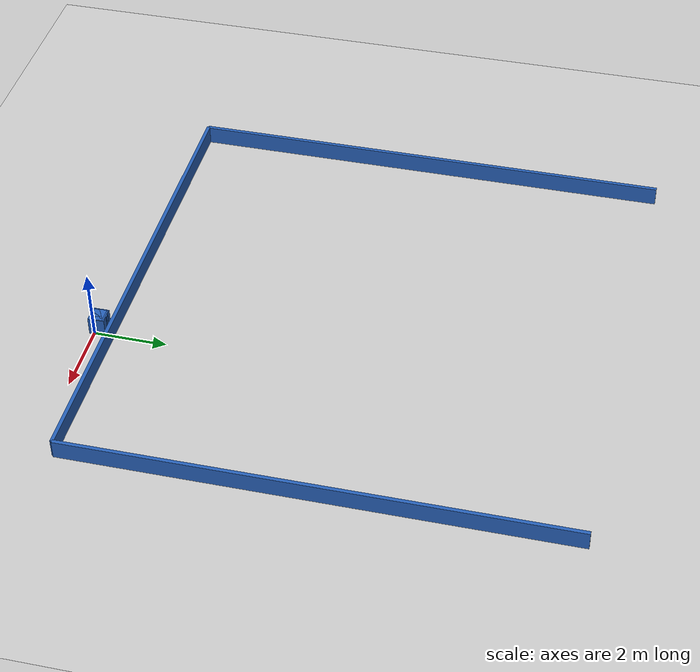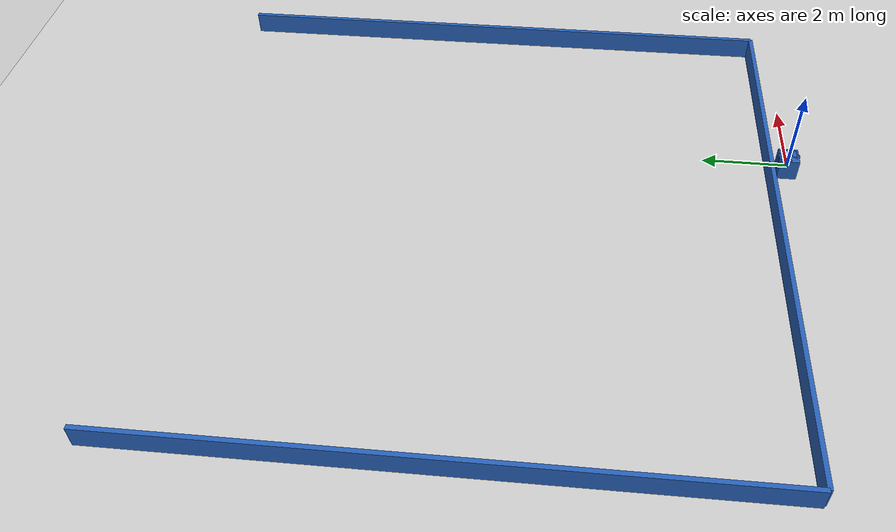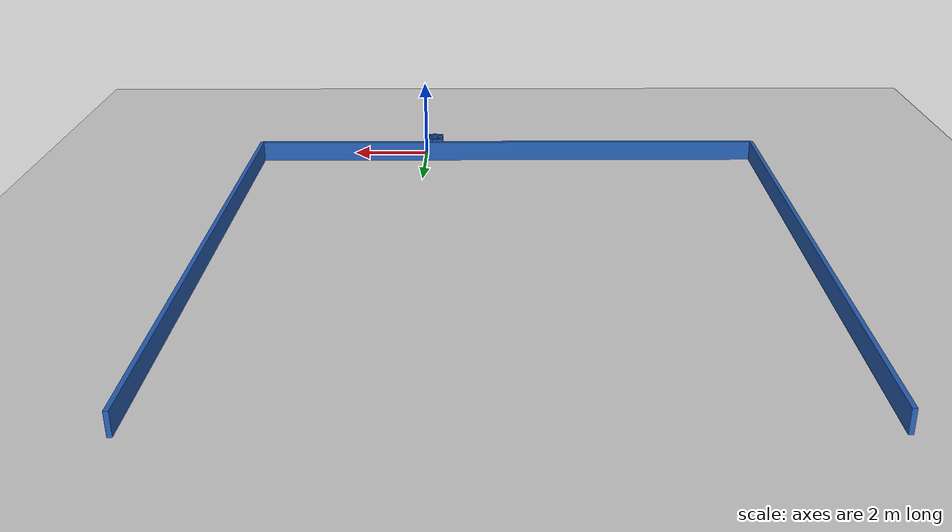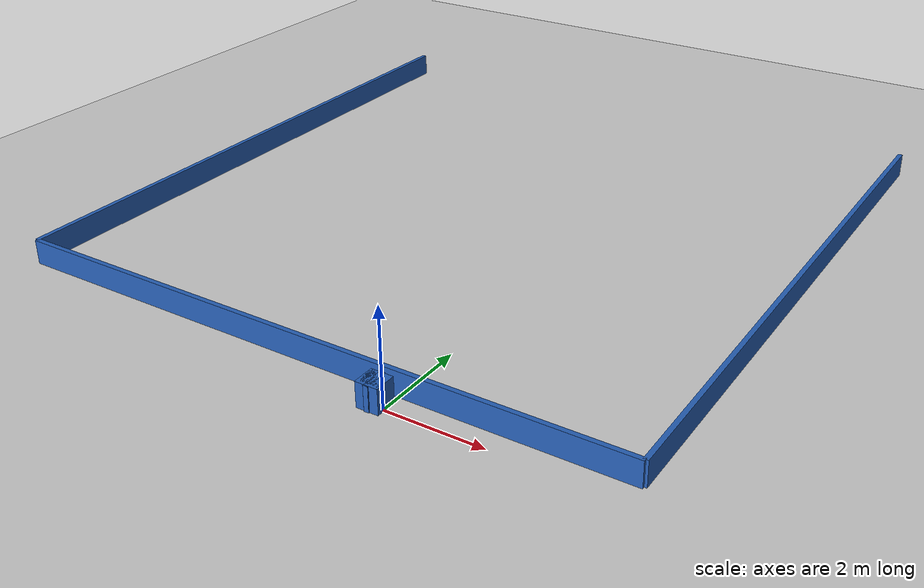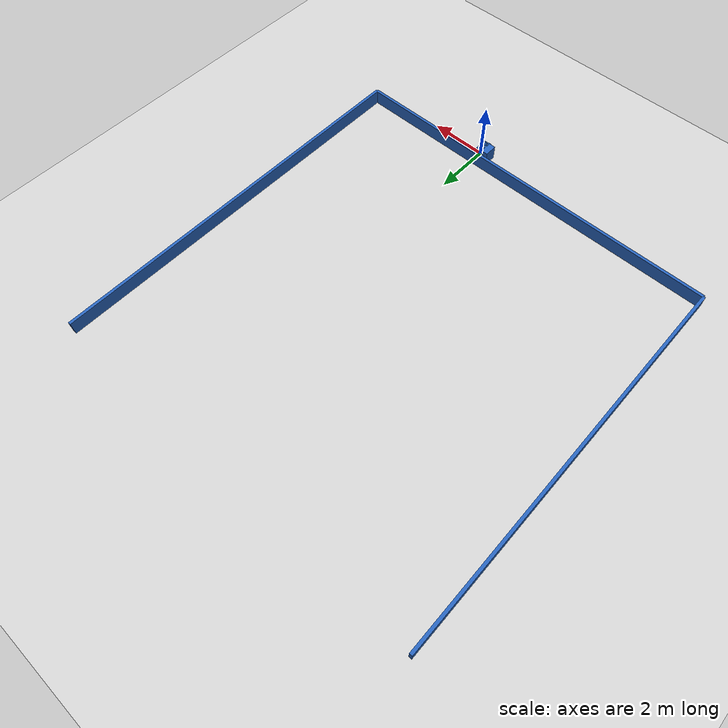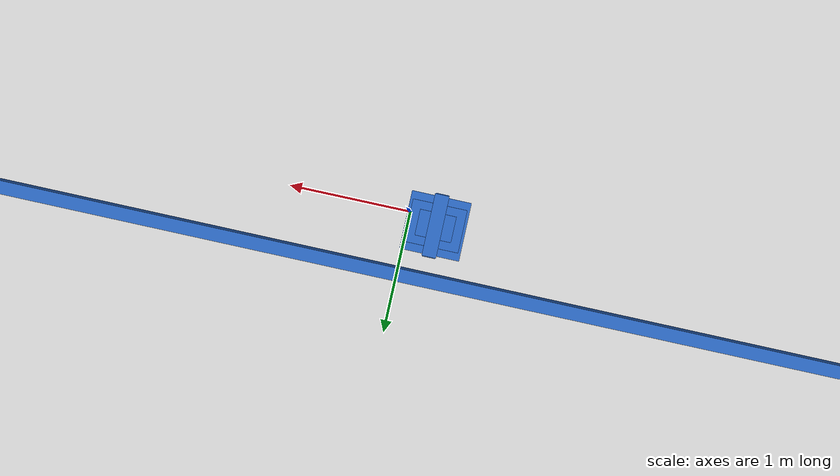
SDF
<?xml version="1.0" ?>
    <sdf version="1.5">
      <world name="default">
        <!-- A global light source -->
        <include>
          <uri>model://sun</uri>
        </include>
        <!-- A ground plane -->
        <include>
          <uri>model://ground_plane</uri>
        </include>

    <model name='libopen_space_final_T2B_140_77'>
      <static>1</static>
      <pose frame=''>-0.225000 0.075000 0.000000 0.000000 0.000000 0.000000</pose>
      <link name='link'>
        <inertial>
          <mass>1</mass>
          <inertia>
            <ixx>0.145833</ixx>
            <ixy>0</ixy>
            <ixz>0</ixz>
            <iyy>0.145833</iyy>
            <iyz>0</iyz>
            <izz>0.125</izz>
          </inertia>
        </inertial>
        <collision name='collision'>
          <geometry>
            <box>
              <size>0.11 0.48 1</size>
            </box>
          </geometry>
          <max_contacts>10</max_contacts>
          <surface>
            <contact>
              <ode/>
            </contact>
            <bounce/>
            <friction>
              <torsional>
                <ode/>
              </torsional>
              <ode/>
            </friction>
          </surface>
        </collision>
        <visual name='visual'>
          <geometry>
            <box>
              <size>0.11 0.48 1</size>
            </box>
          </geometry>
	    <material>
              <ambient>0.152000 0.379000 0.720000 1</ambient>
	      <diffuse>0.152000 0.379000 0.720000 1</diffuse>
          </material>
          <material>
            <script>
              <name>Gazebo/Grey</name>
              <uri>file://media/materials/scripts/gazebo.material</uri>
            </script>
          </material>
        </visual>
        <self_collide>0</self_collide>
        <kinematic>0</kinematic>
        <gravity>1</gravity>
      </link>
      <plugin name='libopen_space_final_T2B_140_77' filename='libopen_space_final_T2B_140_77.so'/>
    </model>

    <model name='libopen_space_final_T2B_126_41'>
      <static>1</static>
      <pose frame=''>-0.225000 0.075000 0.000000 0.000000 0.000000 0.000000</pose>
      <link name='link'>
        <inertial>
          <mass>1</mass>
          <inertia>
            <ixx>0.145833</ixx>
            <ixy>0</ixy>
            <ixz>0</ixz>
            <iyy>0.145833</iyy>
            <iyz>0</iyz>
            <izz>0.125</izz>
          </inertia>
        </inertial>
        <collision name='collision'>
          <geometry>
            <box>
              <size>0.28 0.20 1</size>
            </box>
          </geometry>
          <max_contacts>10</max_contacts>
          <surface>
            <contact>
              <ode/>
            </contact>
            <bounce/>
            <friction>
              <torsional>
                <ode/>
              </torsional>
              <ode/>
            </friction>
          </surface>
        </collision>
        <visual name='visual'>
          <geometry>
            <box>
              <size>0.28 0.20 1</size>
            </box>
          </geometry>
	    <material>
              <ambient>0.152000 0.379000 0.720000 1</ambient>
	      <diffuse>0.152000 0.379000 0.720000 1</diffuse>
          </material>
          <material>
            <script>
              <name>Gazebo/Grey</name>
              <uri>file://media/materials/scripts/gazebo.material</uri>
            </script>
          </material>
        </visual>
        <self_collide>0</self_collide>
        <kinematic>0</kinematic>
        <gravity>1</gravity>
      </link>
      <plugin name='libopen_space_final_T2B_126_41' filename='libopen_space_final_T2B_126_41.so'/>
    </model>

    <model name='libopen_space_final_T2B_115_24'>
      <static>1</static>
      <pose frame=''>-0.225000 0.075000 0.000000 0.000000 0.000000 0.000000</pose>
      <link name='link'>
        <inertial>
          <mass>1</mass>
          <inertia>
            <ixx>0.145833</ixx>
            <ixy>0</ixy>
            <ixz>0</ixz>
            <iyy>0.145833</iyy>
            <iyz>0</iyz>
            <izz>0.125</izz>
          </inertia>
        </inertial>
        <collision name='collision'>
          <geometry>
            <box>
              <size>0.42 0.33 1</size>
            </box>
          </geometry>
          <max_contacts>10</max_contacts>
          <surface>
            <contact>
              <ode/>
            </contact>
            <bounce/>
            <friction>
              <torsional>
                <ode/>
              </torsional>
              <ode/>
            </friction>
          </surface>
        </collision>
        <visual name='visual'>
          <geometry>
            <box>
              <size>0.42 0.33 1</size>
            </box>
          </geometry>
	    <material>
              <ambient>0.152000 0.379000 0.720000 1</ambient>
	      <diffuse>0.152000 0.379000 0.720000 1</diffuse>
          </material>
          <material>
            <script>
              <name>Gazebo/Grey</name>
              <uri>file://media/materials/scripts/gazebo.material</uri>
            </script>
          </material>
        </visual>
        <self_collide>0</self_collide>
        <kinematic>0</kinematic>
        <gravity>1</gravity>
      </link>
      <plugin name='libopen_space_final_T2B_115_24' filename='libopen_space_final_T2B_115_24.so'/>
    </model>

    <model name='libopen_space_final_T2B_80_26'>
      <static>1</static>
      <pose frame=''>-0.225000 0.075000 0.000000 0.000000 0.000000 0.000000</pose>
      <link name='link'>
        <inertial>
          <mass>1</mass>
          <inertia>
            <ixx>0.145833</ixx>
            <ixy>0</ixy>
            <ixz>0</ixz>
            <iyy>0.145833</iyy>
            <iyz>0</iyz>
            <izz>0.125</izz>
          </inertia>
        </inertial>
        <collision name='collision'>
          <geometry>
            <box>
              <size>0.35 0.33 1</size>
            </box>
          </geometry>
          <max_contacts>10</max_contacts>
          <surface>
            <contact>
              <ode/>
            </contact>
            <bounce/>
            <friction>
              <torsional>
                <ode/>
              </torsional>
              <ode/>
            </friction>
          </surface>
        </collision>
        <visual name='visual'>
          <geometry>
            <box>
              <size>0.35 0.33 1</size>
            </box>
          </geometry>
	    <material>
              <ambient>0.152000 0.379000 0.720000 1</ambient>
	      <diffuse>0.152000 0.379000 0.720000 1</diffuse>
          </material>
          <material>
            <script>
              <name>Gazebo/Grey</name>
              <uri>file://media/materials/scripts/gazebo.material</uri>
            </script>
          </material>
        </visual>
        <self_collide>0</self_collide>
        <kinematic>0</kinematic>
        <gravity>1</gravity>
      </link>
      <plugin name='libopen_space_final_T2B_80_26' filename='libopen_space_final_T2B_80_26.so'/>
    </model>

    <model name='libopen_space_final_T2B_129_21'>
      <static>1</static>
      <pose frame=''>-0.225000 0.075000 0.000000 0.000000 0.000000 0.000000</pose>
      <link name='link'>
        <inertial>
          <mass>1</mass>
          <inertia>
            <ixx>0.145833</ixx>
            <ixy>0</ixy>
            <ixz>0</ixz>
            <iyy>0.145833</iyy>
            <iyz>0</iyz>
            <izz>0.125</izz>
          </inertia>
        </inertial>
        <collision name='collision'>
          <geometry>
            <box>
              <size>0.10 0.49 1</size>
            </box>
          </geometry>
          <max_contacts>10</max_contacts>
          <surface>
            <contact>
              <ode/>
            </contact>
            <bounce/>
            <friction>
              <torsional>
                <ode/>
              </torsional>
              <ode/>
            </friction>
          </surface>
        </collision>
        <visual name='visual'>
          <geometry>
            <box>
              <size>0.10 0.49 1</size>
            </box>
          </geometry>
	    <material>
              <ambient>0.152000 0.379000 0.720000 1</ambient>
	      <diffuse>0.152000 0.379000 0.720000 1</diffuse>
          </material>
          <material>
            <script>
              <name>Gazebo/Grey</name>
              <uri>file://media/materials/scripts/gazebo.material</uri>
            </script>
          </material>
        </visual>
        <self_collide>0</self_collide>
        <kinematic>0</kinematic>
        <gravity>1</gravity>
      </link>
      <plugin name='libopen_space_final_T2B_129_21' filename='libopen_space_final_T2B_129_21.so'/>
    </model>

    <model name='libopen_space_final_T2B_112_54'>
      <static>1</static>
      <pose frame=''>-0.225000 0.075000 0.000000 0.000000 0.000000 0.000000</pose>
      <link name='link'>
        <inertial>
          <mass>1</mass>
          <inertia>
            <ixx>0.145833</ixx>
            <ixy>0</ixy>
            <ixz>0</ixz>
            <iyy>0.145833</iyy>
            <iyz>0</iyz>
            <izz>0.125</izz>
          </inertia>
        </inertial>
        <collision name='collision'>
          <geometry>
            <box>
              <size>0.46 0.45 1</size>
            </box>
          </geometry>
          <max_contacts>10</max_contacts>
          <surface>
            <contact>
              <ode/>
            </contact>
            <bounce/>
            <friction>
              <torsional>
                <ode/>
              </torsional>
              <ode/>
            </friction>
          </surface>
        </collision>
        <visual name='visual'>
          <geometry>
            <box>
              <size>0.46 0.45 1</size>
            </box>
          </geometry>
	    <material>
              <ambient>0.152000 0.379000 0.720000 1</ambient>
	      <diffuse>0.152000 0.379000 0.720000 1</diffuse>
          </material>
          <material>
            <script>
              <name>Gazebo/Grey</name>
              <uri>file://media/materials/scripts/gazebo.material</uri>
            </script>
          </material>
        </visual>
        <self_collide>0</self_collide>
        <kinematic>0</kinematic>
        <gravity>1</gravity>
      </link>
      <plugin name='libopen_space_final_T2B_112_54' filename='libopen_space_final_T2B_112_54.so'/>
    </model>

    <model name='libopen_space_final_T2B_126_78'>
      <static>1</static>
      <pose frame=''>-0.225000 0.075000 0.000000 0.000000 0.000000 0.000000</pose>
      <link name='link'>
        <inertial>
          <mass>1</mass>
          <inertia>
            <ixx>0.145833</ixx>
            <ixy>0</ixy>
            <ixz>0</ixz>
            <iyy>0.145833</iyy>
            <iyz>0</iyz>
            <izz>0.125</izz>
          </inertia>
        </inertial>
        <collision name='collision'>
          <geometry>
            <box>
              <size>0.40 0.16 1</size>
            </box>
          </geometry>
          <max_contacts>10</max_contacts>
          <surface>
            <contact>
              <ode/>
            </contact>
            <bounce/>
            <friction>
              <torsional>
                <ode/>
              </torsional>
              <ode/>
            </friction>
          </surface>
        </collision>
        <visual name='visual'>
          <geometry>
            <box>
              <size>0.40 0.16 1</size>
            </box>
          </geometry>
	    <material>
              <ambient>0.152000 0.379000 0.720000 1</ambient>
	      <diffuse>0.152000 0.379000 0.720000 1</diffuse>
          </material>
          <material>
            <script>
              <name>Gazebo/Grey</name>
              <uri>file://media/materials/scripts/gazebo.material</uri>
            </script>
          </material>
        </visual>
        <self_collide>0</self_collide>
        <kinematic>0</kinematic>
        <gravity>1</gravity>
      </link>
      <plugin name='libopen_space_final_T2B_126_78' filename='libopen_space_final_T2B_126_78.so'/>
    </model>

    <model name='libopen_space_final_T2B_114_22'>
      <static>1</static>
      <pose frame=''>-0.225000 0.075000 0.000000 0.000000 0.000000 0.000000</pose>
      <link name='link'>
        <inertial>
          <mass>1</mass>
          <inertia>
            <ixx>0.145833</ixx>
            <ixy>0</ixy>
            <ixz>0</ixz>
            <iyy>0.145833</iyy>
            <iyz>0</iyz>
            <izz>0.125</izz>
          </inertia>
        </inertial>
        <collision name='collision'>
          <geometry>
            <box>
              <size>0.32 0.35 1</size>
            </box>
          </geometry>
          <max_contacts>10</max_contacts>
          <surface>
            <contact>
              <ode/>
            </contact>
            <bounce/>
            <friction>
              <torsional>
                <ode/>
              </torsional>
              <ode/>
            </friction>
          </surface>
        </collision>
        <visual name='visual'>
          <geometry>
            <box>
              <size>0.32 0.35 1</size>
            </box>
          </geometry>
	    <material>
              <ambient>0.152000 0.379000 0.720000 1</ambient>
	      <diffuse>0.152000 0.379000 0.720000 1</diffuse>
          </material>
          <material>
            <script>
              <name>Gazebo/Grey</name>
              <uri>file://media/materials/scripts/gazebo.material</uri>
            </script>
          </material>
        </visual>
        <self_collide>0</self_collide>
        <kinematic>0</kinematic>
        <gravity>1</gravity>
      </link>
      <plugin name='libopen_space_final_T2B_114_22' filename='libopen_space_final_T2B_114_22.so'/>
    </model>

    <model name='libopen_space_final_T2B_134_25'>
      <static>1</static>
      <pose frame=''>-0.225000 0.075000 0.000000 0.000000 0.000000 0.000000</pose>
      <link name='link'>
        <inertial>
          <mass>1</mass>
          <inertia>
            <ixx>0.145833</ixx>
            <ixy>0</ixy>
            <ixz>0</ixz>
            <iyy>0.145833</iyy>
            <iyz>0</iyz>
            <izz>0.125</izz>
          </inertia>
        </inertial>
        <collision name='collision'>
          <geometry>
            <box>
              <size>0.37 0.13 1</size>
            </box>
          </geometry>
          <max_contacts>10</max_contacts>
          <surface>
            <contact>
              <ode/>
            </contact>
            <bounce/>
            <friction>
              <torsional>
                <ode/>
              </torsional>
              <ode/>
            </friction>
          </surface>
        </collision>
        <visual name='visual'>
          <geometry>
            <box>
              <size>0.37 0.13 1</size>
            </box>
          </geometry>
	    <material>
              <ambient>0.152000 0.379000 0.720000 1</ambient>
	      <diffuse>0.152000 0.379000 0.720000 1</diffuse>
          </material>
          <material>
            <script>
              <name>Gazebo/Grey</name>
              <uri>file://media/materials/scripts/gazebo.material</uri>
            </script>
          </material>
        </visual>
        <self_collide>0</self_collide>
        <kinematic>0</kinematic>
        <gravity>1</gravity>
      </link>
      <plugin name='libopen_space_final_T2B_134_25' filename='libopen_space_final_T2B_134_25.so'/>
    </model>

    <model name='libopen_space_final_T2B_57_10'>
      <static>1</static>
      <pose frame=''>-0.225000 0.075000 0.000000 0.000000 0.000000 0.000000</pose>
      <link name='link'>
        <inertial>
          <mass>1</mass>
          <inertia>
            <ixx>0.145833</ixx>
            <ixy>0</ixy>
            <ixz>0</ixz>
            <iyy>0.145833</iyy>
            <iyz>0</iyz>
            <izz>0.125</izz>
          </inertia>
        </inertial>
        <collision name='collision'>
          <geometry>
            <box>
              <size>0.16 0.25 1</size>
            </box>
          </geometry>
          <max_contacts>10</max_contacts>
          <surface>
            <contact>
              <ode/>
            </contact>
            <bounce/>
            <friction>
              <torsional>
                <ode/>
              </torsional>
              <ode/>
            </friction>
          </surface>
        </collision>
        <visual name='visual'>
          <geometry>
            <box>
              <size>0.16 0.25 1</size>
            </box>
          </geometry>
	    <material>
              <ambient>0.152000 0.379000 0.720000 1</ambient>
	      <diffuse>0.152000 0.379000 0.720000 1</diffuse>
          </material>
          <material>
            <script>
              <name>Gazebo/Grey</name>
              <uri>file://media/materials/scripts/gazebo.material</uri>
            </script>
          </material>
        </visual>
        <self_collide>0</self_collide>
        <kinematic>0</kinematic>
        <gravity>1</gravity>
      </link>
      <plugin name='libopen_space_final_T2B_57_10' filename='libopen_space_final_T2B_57_10.so'/>
    </model>

    <model name='libopen_space_final_T2B_125_48'>
      <static>1</static>
      <pose frame=''>-0.225000 0.075000 0.000000 0.000000 0.000000 0.000000</pose>
      <link name='link'>
        <inertial>
          <mass>1</mass>
          <inertia>
            <ixx>0.145833</ixx>
            <ixy>0</ixy>
            <ixz>0</ixz>
            <iyy>0.145833</iyy>
            <iyz>0</iyz>
            <izz>0.125</izz>
          </inertia>
        </inertial>
        <collision name='collision'>
          <geometry>
            <box>
              <size>0.39 0.40 1</size>
            </box>
          </geometry>
          <max_contacts>10</max_contacts>
          <surface>
            <contact>
              <ode/>
            </contact>
            <bounce/>
            <friction>
              <torsional>
                <ode/>
              </torsional>
              <ode/>
            </friction>
          </surface>
        </collision>
        <visual name='visual'>
          <geometry>
            <box>
              <size>0.39 0.40 1</size>
            </box>
          </geometry>
	    <material>
              <ambient>0.152000 0.379000 0.720000 1</ambient>
	      <diffuse>0.152000 0.379000 0.720000 1</diffuse>
          </material>
          <material>
            <script>
              <name>Gazebo/Grey</name>
              <uri>file://media/materials/scripts/gazebo.material</uri>
            </script>
          </material>
        </visual>
        <self_collide>0</self_collide>
        <kinematic>0</kinematic>
        <gravity>1</gravity>
      </link>
      <plugin name='libopen_space_final_T2B_125_48' filename='libopen_space_final_T2B_125_48.so'/>
    </model>

        <model name='bottom_wall'>
          <static>1</static>
          <pose frame=''>-2.25 0.5 0.000000 0.000000 0.000000 1.57079632</pose>
          <link name='link'>
            <inertial>
            <mass>1</mass>
            <inertia>
              <ixx>0.145833</ixx>
              <ixy>0</ixy>
              <ixz>0</ixz>
              <iyy>0.145833</iyy>
              <iyz>0</iyz>
              <izz>0.125</izz>
            </inertia>
            </inertial>
            <collision name='collision'>
            <geometry>
              <box>
              <size>0.1 13.5 1</size>
              </box>
            </geometry>
            <max_contacts>10</max_contacts>
            <surface>
              <contact>
              <ode/>
              </contact>
              <bounce/>
              <friction>
              <torsional>
                <ode/>
              </torsional>
              <ode/>
              </friction>
            </surface>
            </collision>
            <visual name='visual'>
            <geometry>
              <box>
              <size>0.1 13.5 1</size>
              </box>
            </geometry>
            <material>
              <ambient>0.152000 0.379000 0.720000 1</ambient>
            <diffuse>0.152000 0.379000 0.720000 1</diffuse>
            </material>
            <material>
              <script>
              <name>Gazebo/Grey</name>
              <uri>file://media/materials/scripts/gazebo.material</uri>
              </script>
            </material>
            </visual>
            <self_collide>0</self_collide>
            <kinematic>0</kinematic>
            <gravity>1</gravity>
          </link>
        </model>

        <model name='left_wall'>
          <static>1</static>
          <pose frame=''>-9 7.25 0.000000 0.000000 0.000000 0.000000</pose>
          <link name='link'>
            <inertial>
            <mass>1</mass>
            <inertia>
              <ixx>0.145833</ixx>
              <ixy>0</ixy>
              <ixz>0</ixz>
              <iyy>0.145833</iyy>
              <iyz>0</iyz>
              <izz>0.125</izz>
            </inertia>
            </inertial>
            <collision name='collision'>
            <geometry>
              <box>
              <size>0.1 13.5 1</size>
              </box>
            </geometry>
            <max_contacts>10</max_contacts>
            <surface>
              <contact>
              <ode/>
              </contact>
              <bounce/>
              <friction>
              <torsional>
                <ode/>
              </torsional>
              <ode/>
              </friction>
            </surface>
            </collision>
            <visual name='visual'>
            <geometry>
              <box>
              <size>0.1 13.5 1</size>
              </box>
            </geometry>
            <material>
              <ambient>0.152000 0.379000 0.720000 1</ambient>
            <diffuse>0.152000 0.379000 0.720000 1</diffuse>
            </material>
            <material>
              <script>
              <name>Gazebo/Grey</name>
              <uri>file://media/materials/scripts/gazebo.material</uri>
              </script>
            </material>
            </visual>
            <self_collide>0</self_collide>
            <kinematic>0</kinematic>
            <gravity>1</gravity>
          </link>
        </model>

        <model name='right_wall'>
          <static>1</static>
          <pose frame=''>4.5 7.25 0.000000 0.000000 0.000000 0.000000</pose>
          <link name='link'>
            <inertial>
            <mass>1</mass>
            <inertia>
              <ixx>0.145833</ixx>
              <ixy>0</ixy>
              <ixz>0</ixz>
              <iyy>0.145833</iyy>
              <iyz>0</iyz>
              <izz>0.125</izz>
            </inertia>
            </inertial>
            <collision name='collision'>
            <geometry>
              <box>
              <size>0.1 13.5 1</size>
              </box>
            </geometry>
            <max_contacts>10</max_contacts>
            <surface>
              <contact>
              <ode/>
              </contact>
              <bounce/>
              <friction>
              <torsional>
                <ode/>
              </torsional>
              <ode/>
              </friction>
            </surface>
            </collision>
            <visual name='visual'>
            <geometry>
              <box>
              <size>0.1 13.5 1</size>
              </box>
            </geometry>
            <material>
              <ambient>0.152000 0.379000 0.720000 1</ambient>
            <diffuse>0.152000 0.379000 0.720000 1</diffuse>
            </material>
            <material>
              <script>
              <name>Gazebo/Grey</name>
              <uri>file://media/materials/scripts/gazebo.material</uri>
              </script>
            </material>
            </visual>
            <self_collide>0</self_collide>
            <kinematic>0</kinematic>
            <gravity>1</gravity>
          </link>
        </model>

      </world>
    </sdf>"
